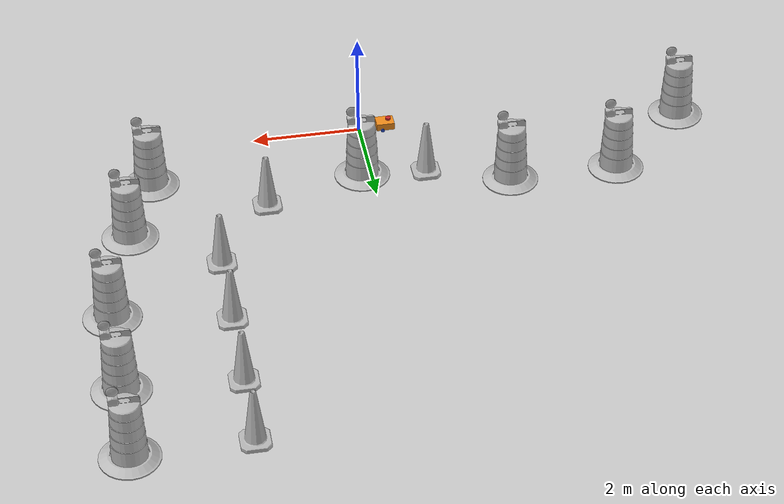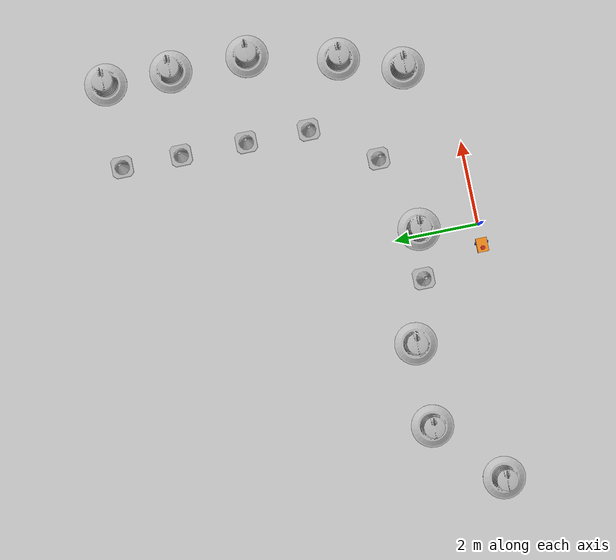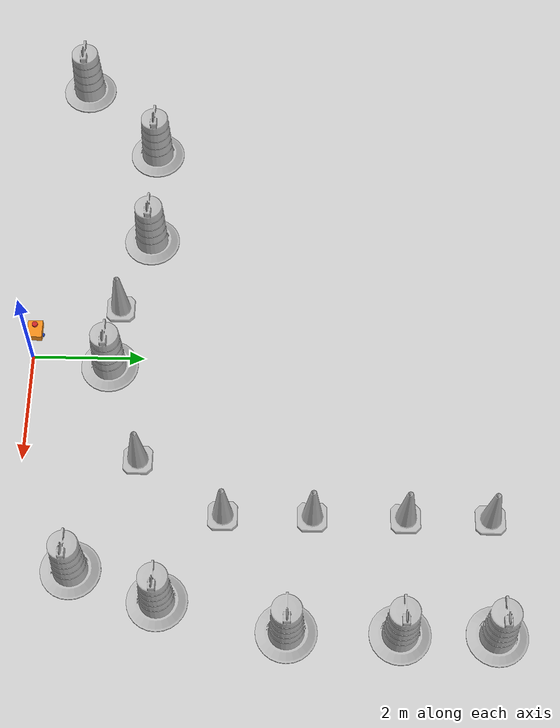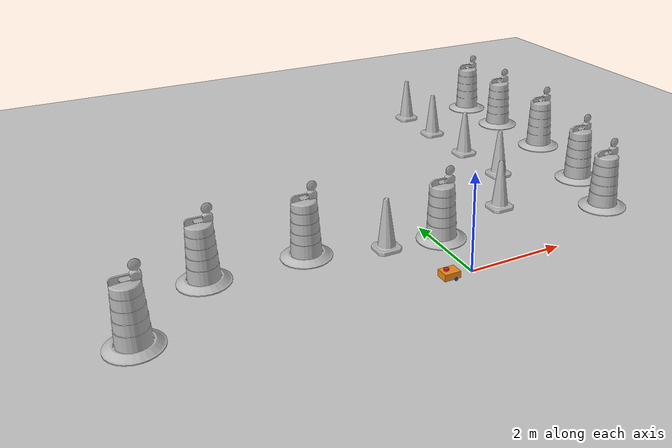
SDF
<sdf version="1.7">
 <world name="default">
  <model name="ground_plane">
   <static>1</static>
   <link name="link">
    <collision name="collision">
     <geometry><plane><normal>0 0 1</normal><size>100 100</size></plane></geometry>
     <surface>
      <contact><collide_bitmask>65535</collide_bitmask></contact>
      <friction><ode><mu>100</mu><mu2>50</mu2></ode></friction>
     </surface>
    </collision>
    <visual name="visual">
     <cast_shadows>0</cast_shadows>
     <geometry><plane><normal>0 0 1</normal><size>100 100</size></plane></geometry>
     <material>
      <script><uri>file://media/materials/scripts/gazebo.material</uri><name>Gazebo/Grey</name></script>
     </material>
    </visual>
   </link>
  </model>
  <model name="my_bot">
   <link name="base_link">
    <inertial>
     <pose>-0.071082 0 0.075033 0 -0 0</pose>
     <mass>0.61</mass>
     <inertia>
      <ixx>0.00482981</ixx>
      <ixy>0</ixy>
      <ixz>0.000516598</ixz>
      <iyy>0.00702444</iyy>
      <iyz>0</iyz>
      <izz>0.0081721</izz>
     </inertia>
    </inertial>
    <collision name="base_link_fixed_joint_lump__chassis_collision">
     <pose>-0.0585 0 0.059 0 -0 0</pose>
     <geometry><box><size>0.335 0.265 0.138</size></box></geometry>
    </collision>
    <collision name="base_link_fixed_joint_lump__caster_wheel_collision_1">
     <pose>-0.151 0 -0.023 0 -0 0</pose>
     <geometry><sphere><radius>0.01</radius></sphere></geometry>
     <surface><friction><ode><mu>0.001</mu><mu2>0.001</mu2></ode></friction></surface>
    </collision>
    <collision name="base_link_fixed_joint_lump__laser_frame_collision_2">
     <pose>-0.126 0 0.165 0 -0 0</pose>
     <geometry><cylinder><length>0.04</length><radius>0.05</radius></cylinder></geometry>
    </collision>
    <visual name="base_link_fixed_joint_lump__chassis_visual">
     <pose>-0.0585 0 0.059 0 -0 0</pose>
     <geometry><box><size>0.335 0.265 0.138</size></box></geometry>
     <material>
      <script><name>Gazebo/Orange</name><uri>file://media/materials/scripts/gazebo.material</uri></script>
     </material>
    </visual>
    <visual name="base_link_fixed_joint_lump__camera_link_visual_1">
     <pose>0.079 0 0.07 0 -0 0</pose>
     <geometry><box><size>0.01 0.03 0.03</size></box></geometry>
     <material>
      <script><name>Gazebo/Red</name><uri>file://media/materials/scripts/gazebo.material</uri></script>
     </material>
    </visual>
    <visual name="base_link_fixed_joint_lump__caster_wheel_visual_2">
     <pose>-0.151 0 -0.023 0 -0 0</pose>
     <geometry><sphere><radius>0.01</radius></sphere></geometry>
     <material>
      <script><name>Gazebo/White</name><uri>file://media/materials/scripts/gazebo.material</uri></script>
     </material>
    </visual>
    <visual name="base_link_fixed_joint_lump__laser_frame_visual_3">
     <pose>-0.126 0 0.165 0 -0 0</pose>
     <geometry><cylinder><length>0.04</length><radius>0.05</radius></cylinder></geometry>
     <material>
      <script><name>Gazebo/Red</name><uri>file://media/materials/scripts/gazebo.material</uri></script>
     </material>
    </visual>
    <sensor name="camera" type="camera">
     <visualize>1</visualize>
     <update_rate>10</update_rate>
     <camera>
      <horizontal_fov>1.089</horizontal_fov>
      <image><format>R8G8B8</format><width>640</width><height>480</height></image>
      <clip><near>0.05</near><far>8</far></clip>
     </camera>
     <plugin name="camera_controller" filename="libgazebo_ros_camera.so">
      <frame_name>camera_link_optical</frame_name>
     </plugin>
     <pose>0.079 0 0.07 0 -0 0</pose>
    </sensor>
    <sensor name="laser" type="ray">
     <visualize>1</visualize>
     <update_rate>10</update_rate>
     <ray>
      <scan>
       <horizontal>
        <samples>360</samples>
        <min_angle>-3.14</min_angle>
        <max_angle>3.14</max_angle>
        <resolution>1</resolution>
       </horizontal>
       <vertical><samples>1</samples><min_angle>0</min_angle><max_angle>0</max_angle></vertical>
      </scan>
      <range><min>0.3</min><max>12</max></range>
     </ray>
     <plugin name="laser_controller" filename="libgazebo_ros_ray_sensor.so">
      <ros><argument>~/out:=scan</argument></ros>
      <output_type>sensor_msgs/LaserScan</output_type>
      <frame_name>laser_frame</frame_name>
     </plugin>
     <pose>-0.126 0 0.165 0 -0 0</pose>
    </sensor>
   </link>
   <joint name="left_wheel_joint" type="revolute">
    <pose relative_to="base_link">0 0.1485 0 -1.5708 0 0</pose>
    <parent>base_link</parent>
    <child>left_wheel</child>
    <axis>
     <xyz>0 0 1</xyz>
     <limit><lower>-1e+16</lower><upper>1e+16</upper></limit>
     <dynamics><spring_reference>0</spring_reference><spring_stiffness>0</spring_stiffness></dynamics>
    </axis>
   </joint>
   <link name="left_wheel">
    <pose relative_to="left_wheel_joint">0 0 0 0 -0 0</pose>
    <inertial>
     <mass>0.05</mass>
     <inertia>
      <ixx>1.64292e-05</ixx>
      <ixy>0</ixy>
      <ixz>0</ixz>
      <iyy>1.64292e-05</iyy>
      <iyz>0</iyz>
      <izz>2.7225e-05</izz>
     </inertia>
    </inertial>
    <collision name="left_wheel_collision">
     <geometry><sphere><radius>0.033</radius></sphere></geometry>
    </collision>
    <visual name="left_wheel_visual">
     <geometry><cylinder><length>0.026</length><radius>0.033</radius></cylinder></geometry>
     <material>
      <script><name>Gazebo/Blue</name><uri>file://media/materials/scripts/gazebo.material</uri></script>
     </material>
    </visual>
   </link>
   <joint name="right_wheel_joint" type="revolute">
    <pose relative_to="base_link">0 -0.1485 0 1.5708 -0 0</pose>
    <parent>base_link</parent>
    <child>right_wheel</child>
    <axis>
     <xyz>0 0 -1</xyz>
     <limit><lower>-1e+16</lower><upper>1e+16</upper></limit>
     <dynamics><spring_reference>0</spring_reference><spring_stiffness>0</spring_stiffness></dynamics>
    </axis>
   </joint>
   <link name="right_wheel">
    <pose relative_to="right_wheel_joint">0 0 0 0 -0 0</pose>
    <inertial>
     <mass>0.05</mass>
     <inertia>
      <ixx>1.64292e-05</ixx>
      <ixy>0</ixy>
      <ixz>0</ixz>
      <iyy>1.64292e-05</iyy>
      <iyz>0</iyz>
      <izz>2.7225e-05</izz>
     </inertia>
    </inertial>
    <collision name="right_wheel_collision">
     <geometry><sphere><radius>0.033</radius></sphere></geometry>
    </collision>
    <visual name="right_wheel_visual">
     <geometry><cylinder><length>0.026</length><radius>0.033</radius></cylinder></geometry>
     <material>
      <script><name>Gazebo/Blue</name><uri>file://media/materials/scripts/gazebo.material</uri></script>
     </material>
    </visual>
   </link>
   <static>0</static>
   <plugin name="diff_drive" filename="libgazebo_ros_diff_drive.so">
    <left_joint>left_wheel_joint</left_joint>
    <right_joint>right_wheel_joint</right_joint>
    <wheel_separation>0.35</wheel_separation>
    <wheel_diameter>0.1</wheel_diameter>
    <max_wheel_torque>200</max_wheel_torque>
    <max_wheel_acceleration>10.0</max_wheel_acceleration>
    <odometry_frame>odom</odometry_frame>
    <robot_base_frame>base_link</robot_base_frame>
    <publish_odom>1</publish_odom>
    <publish_odom_tf>1</publish_odom_tf>
    <publish_wheel_tf>1</publish_wheel_tf>
   </plugin>
   <pose>-0.437121 0.001346 0.033 0 6e-06 0.003322</pose>
  </model>
  <model name="Construction Barrel_clone">
   <link name="link">
    <inertial>
     <pose>0 0 0.4 0 -0 0</pose>
     <mass>500</mass>
     <inertia><ixx>51.2096</ixx><iyy>51.2096</iyy><izz>25</izz><ixy>0</ixy><ixz>0</ixz><iyz>0</iyz></inertia>
    </inertial>
    <collision name="collision">
     <geometry><mesh><uri>model://construction_barrel/meshes/construction_barrel.dae</uri></mesh></geometry>
    </collision>
    <visual name="visual">
     <geometry><mesh><uri>model://construction_barrel/meshes/construction_barrel.dae</uri></mesh></geometry>
    </visual>
   </link>
   <pose>0.165882 1.3872 -0 0 -0 -3.7e-05</pose>
  </model>
  <model name="Construction Barrel_clone_clone">
   <link name="link">
    <inertial>
     <pose>0 0 0.4 0 -0 0</pose>
     <mass>500</mass>
     <inertia><ixx>51.2096</ixx><iyy>51.2096</iyy><izz>25</izz><ixy>0</ixy><ixz>0</ixz><iyz>0</iyz></inertia>
    </inertial>
    <collision name="collision">
     <geometry><mesh><uri>model://construction_barrel/meshes/construction_barrel.dae</uri></mesh></geometry>
    </collision>
    <visual name="visual">
     <geometry><mesh><uri>model://construction_barrel/meshes/construction_barrel.dae</uri></mesh></geometry>
    </visual>
   </link>
   <pose>-2.48117 1.99994 -2e-06 7e-06 -2e-06 -3.8e-05</pose>
  </model>
  <model name="Construction Barrel_clone_clone_0">
   <link name="link">
    <inertial>
     <pose>0 0 0.4 0 -0 0</pose>
     <mass>500</mass>
     <inertia><ixx>51.2096</ixx><iyy>51.2096</iyy><izz>25</izz><ixy>0</ixy><ixz>0</ixz><iyz>0</iyz></inertia>
    </inertial>
    <collision name="collision">
     <geometry><mesh><uri>model://construction_barrel/meshes/construction_barrel.dae</uri></mesh></geometry>
    </collision>
    <visual name="visual">
     <geometry><mesh><uri>model://construction_barrel/meshes/construction_barrel.dae</uri></mesh></geometry>
    </visual>
   </link>
   <pose>-4.46877 1.99994 -0 0 -0 -3.7e-05</pose>
  </model>
  <model name="Construction Barrel_clone_clone_1">
   <link name="link">
    <inertial>
     <pose>0 0 0.4 0 -0 0</pose>
     <mass>500</mass>
     <inertia><ixx>51.2096</ixx><iyy>51.2096</iyy><izz>25</izz><ixy>0</ixy><ixz>0</ixz><iyz>0</iyz></inertia>
    </inertial>
    <collision name="collision">
     <geometry><mesh><uri>model://construction_barrel/meshes/construction_barrel.dae</uri></mesh></geometry>
    </collision>
    <visual name="visual">
     <geometry><mesh><uri>model://construction_barrel/meshes/construction_barrel.dae</uri></mesh></geometry>
    </visual>
   </link>
   <pose>-6.0001 0.576021 0 0 0 -3.5e-05</pose>
  </model>
  <model name="Construction Cone_clone">
   <link name="link">
    <collision name="collision">
     <geometry>
      <mesh><scale>10 10 10</scale><uri>model://construction_cone/meshes/construction_cone.dae</uri></mesh>
     </geometry>
    </collision>
    <visual name="visual">
     <geometry>
      <mesh><scale>10 10 10</scale><uri>model://construction_cone/meshes/construction_cone.dae</uri></mesh>
     </geometry>
    </visual>
    <inertial>
     <inertia><ixx>1</ixx><ixy>0</ixy><ixz>0</ixz><iyy>1</iyy><iyz>0</iyz><izz>1</izz></inertia>
     <mass>1</mass>
    </inertial>
   </link>
   <pose>2 2 -0 -0 -0 -0</pose>
  </model>
  <model name="Construction Cone_clone_0">
   <link name="link">
    <collision name="collision">
     <geometry>
      <mesh><scale>10 10 10</scale><uri>model://construction_cone/meshes/construction_cone.dae</uri></mesh>
     </geometry>
    </collision>
    <visual name="visual">
     <geometry>
      <mesh><scale>10 10 10</scale><uri>model://construction_cone/meshes/construction_cone.dae</uri></mesh>
     </geometry>
    </visual>
    <inertial>
     <inertia><ixx>1</ixx><ixy>0</ixy><ixz>0</ixz><iyy>1</iyy><iyz>0</iyz><izz>1</izz></inertia>
     <mass>1</mass>
    </inertial>
   </link>
   <pose>3 3.49018 -0 0 -0 0</pose>
  </model>
  <model name="Construction Cone_clone_1">
   <link name="link">
    <collision name="collision">
     <geometry>
      <mesh><scale>10 10 10</scale><uri>model://construction_cone/meshes/construction_cone.dae</uri></mesh>
     </geometry>
    </collision>
    <visual name="visual">
     <geometry>
      <mesh><scale>10 10 10</scale><uri>model://construction_cone/meshes/construction_cone.dae</uri></mesh>
     </geometry>
    </visual>
    <inertial>
     <inertia><ixx>1</ixx><ixy>0</ixy><ixz>0</ixz><iyy>1</iyy><iyz>0</iyz><izz>1</izz></inertia>
     <mass>1</mass>
    </inertial>
   </link>
   <pose>3 5 -1e-05 0 -0 0</pose>
  </model>
  <model name="Construction Cone_clone_2">
   <link name="link">
    <collision name="collision">
     <geometry>
      <mesh><scale>10 10 10</scale><uri>model://construction_cone/meshes/construction_cone.dae</uri></mesh>
     </geometry>
    </collision>
    <visual name="visual">
     <geometry>
      <mesh><scale>10 10 10</scale><uri>model://construction_cone/meshes/construction_cone.dae</uri></mesh>
     </geometry>
    </visual>
    <inertial>
     <inertia><ixx>1</ixx><ixy>0</ixy><ixz>0</ixz><iyy>1</iyy><iyz>0</iyz><izz>1</izz></inertia>
     <mass>1</mass>
    </inertial>
   </link>
   <pose>3 6.57364 -3e-06 -3e-06 -1e-06 -0</pose>
  </model>
  <model name="Construction Cone_clone_3">
   <link name="link">
    <collision name="collision">
     <geometry>
      <mesh><scale>10 10 10</scale><uri>model://construction_cone/meshes/construction_cone.dae</uri></mesh>
     </geometry>
    </collision>
    <visual name="visual">
     <geometry>
      <mesh><scale>10 10 10</scale><uri>model://construction_cone/meshes/construction_cone.dae</uri></mesh>
     </geometry>
    </visual>
    <inertial>
     <inertia><ixx>1</ixx><ixy>0</ixy><ixz>0</ixz><iyy>1</iyy><iyz>0</iyz><izz>1</izz></inertia>
     <mass>1</mass>
    </inertial>
   </link>
   <pose>3 8 -0 0 -1e-06 0</pose>
  </model>
  <model name="Construction Barrel_clone_2">
   <link name="link">
    <inertial>
     <pose>0 0 0.4 0 -0 0</pose>
     <mass>500</mass>
     <inertia><ixx>51.2096</ixx><iyy>51.2096</iyy><izz>25</izz><ixy>0</ixy><ixz>0</ixz><iyz>0</iyz></inertia>
    </inertial>
    <collision name="collision">
     <geometry><mesh><uri>model://construction_barrel/meshes/construction_barrel.dae</uri></mesh></geometry>
    </collision>
    <visual name="visual">
     <geometry><mesh><uri>model://construction_barrel/meshes/construction_barrel.dae</uri></mesh></geometry>
    </visual>
   </link>
   <pose>3.99997 0.99997 -2e-06 1e-06 8e-06 -3.8e-05</pose>
  </model>
  <model name="Construction Barrel_clone_3">
   <link name="link">
    <inertial>
     <pose>0 0 0.4 0 -0 0</pose>
     <mass>500</mass>
     <inertia><ixx>51.2096</ixx><iyy>51.2096</iyy><izz>25</izz><ixy>0</ixy><ixz>0</ixz><iyz>0</iyz></inertia>
    </inertial>
    <collision name="collision">
     <geometry><mesh><uri>model://construction_barrel/meshes/construction_barrel.dae</uri></mesh></geometry>
    </collision>
    <visual name="visual">
     <geometry><mesh><uri>model://construction_barrel/meshes/construction_barrel.dae</uri></mesh></geometry>
    </visual>
   </link>
   <pose>4.51294 2.45988 -0 0 -0 -3.6e-05</pose>
  </model>
  <model name="Construction Barrel_clone_4">
   <link name="link">
    <inertial>
     <pose>0 0 0.4 0 -0 0</pose>
     <mass>500</mass>
     <inertia><ixx>51.2096</ixx><iyy>51.2096</iyy><izz>25</izz><ixy>0</ixy><ixz>0</ixz><iyz>0</iyz></inertia>
    </inertial>
    <collision name="collision">
     <geometry><mesh><uri>model://construction_barrel/meshes/construction_barrel.dae</uri></mesh></geometry>
    </collision>
    <visual name="visual">
     <geometry><mesh><uri>model://construction_barrel/meshes/construction_barrel.dae</uri></mesh></geometry>
    </visual>
   </link>
   <pose>4.99996 4.58197 -2e-06 1e-06 8e-06 -3e-05</pose>
  </model>
  <model name="Construction Barrel_clone_5">
   <link name="link">
    <inertial>
     <pose>0 0 0.4 0 -0 0</pose>
     <mass>500</mass>
     <inertia><ixx>51.2096</ixx><iyy>51.2096</iyy><izz>25</izz><ixy>0</ixy><ixz>0</ixz><iyz>0</iyz></inertia>
    </inertial>
    <collision name="collision">
     <geometry><mesh><uri>model://construction_barrel/meshes/construction_barrel.dae</uri></mesh></geometry>
    </collision>
    <visual name="visual">
     <geometry><mesh><uri>model://construction_barrel/meshes/construction_barrel.dae</uri></mesh></geometry>
    </visual>
   </link>
   <pose>4.99997 6.42526 -0 0 -0 -3.7e-05</pose>
  </model>
  <model name="Construction Barrel_clone_6">
   <link name="link">
    <inertial>
     <pose>0 0 0.4 0 -0 0</pose>
     <mass>500</mass>
     <inertia><ixx>51.2096</ixx><iyy>51.2096</iyy><izz>25</izz><ixy>0</ixy><ixz>0</ixz><iyz>0</iyz></inertia>
    </inertial>
    <collision name="collision">
     <geometry><mesh><uri>model://construction_barrel/meshes/construction_barrel.dae</uri></mesh></geometry>
    </collision>
    <visual name="visual">
     <geometry><mesh><uri>model://construction_barrel/meshes/construction_barrel.dae</uri></mesh></geometry>
    </visual>
   </link>
   <pose>4.99997 7.99998 -0 0 -0 -3.6e-05</pose>
  </model>
  <model name="Construction Cone_clone_4_clone">
   <link name="link">
    <collision name="collision">
     <geometry>
      <mesh><scale>10 10 10</scale><uri>model://construction_cone/meshes/construction_cone.dae</uri></mesh>
     </geometry>
    </collision>
    <visual name="visual">
     <geometry>
      <mesh><scale>10 10 10</scale><uri>model://construction_cone/meshes/construction_cone.dae</uri></mesh>
     </geometry>
    </visual>
    <inertial>
     <inertia><ixx>1</ixx><ixy>0</ixy><ixz>0</ixz><iyy>1</iyy><iyz>0</iyz><izz>1</izz></inertia>
     <mass>1</mass>
    </inertial>
   </link>
   <pose>-1 1.5132 -0 0 -1e-06 0</pose>
  </model>
 </world>
</sdf>
